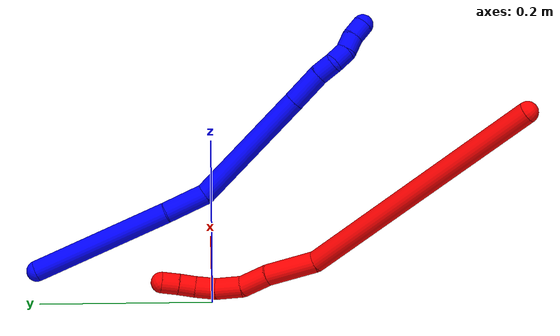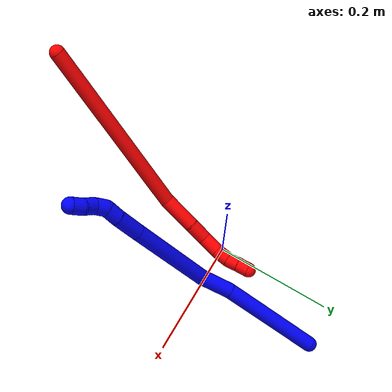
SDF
<sdf version="1.7">
 <world name="default">
  <plugin name="TubeGeneratorPlugin" filename="libtube_generator_plugin.so"/>
  <model name="photoneo_s_sensor">
   <static>1</static>
   <pose>0 0 2 1.57079 1.57079 3.14159</pose>
   <link name="link">
    <inertial><mass>0.1</mass></inertial>
    <sensor name="sensor" type="depth">
     <update_rate>30</update_rate>
     <camera>
      <horizontal_fov>1.22</horizontal_fov>
      <image><width>1920</width><height>1200</height><format>B8G8R8</format></image>
      <clip><near>0.1</near><far>4</far></clip>
      <depth_camera><output>points</output></depth_camera>
     </camera>
     <plugin name="camera_plugin" filename="libgazebo_ros_depth_camera.so">
      <baseline>0.2</baseline>
      <alwaysOn>1</alwaysOn>
      <updateRate>0.0</updateRate>
      <cameraName>camera_ir</cameraName>
      <imageTopicName>/camera/color/image_raw</imageTopicName>
      <cameraInfoTopicName>/camera/color/camera_info</cameraInfoTopicName>
      <depthImageTopicName>/camera/depth/image_raw</depthImageTopicName>
      <depthImageCameraInfoTopicName>/camera/depth/camera_info</depthImageCameraInfoTopicName>
      <pointCloudTopicName>/camera/depth/points</pointCloudTopicName>
      <frameName>fr_optical</frameName>
      <pointCloudCutoff>0.1</pointCloudCutoff>
      <pointCloudCutoffMax>2.0</pointCloudCutoffMax>
      <distortionK1>0</distortionK1>
      <distortionK2>0</distortionK2>
      <distortionK3>0</distortionK3>
      <distortionT1>0</distortionT1>
      <distortionT2>0</distortionT2>
      <CxPrime>0</CxPrime>
      <Cx>0</Cx>
      <Cy>0</Cy>
      <focalLength>0</focalLength>
      <hackBaseline>0</hackBaseline>
     </plugin>
    </sensor>
   </link>
  </model>
  <gravity>0 0 -9.8</gravity>
  <magnetic_field>6e-06 2.3e-05 -4.2e-05</magnetic_field>
  <atmosphere type="adiabatic"/>
  <physics name="default_physics" default="0" type="ode">
   <max_step_size>0.003</max_step_size>
   <real_time_factor>1</real_time_factor>
   <real_time_update_rate>1000</real_time_update_rate>
   <max_contacts>10000</max_contacts>
   <ode>
    <solver>
     <type>quick</type>
     <iters>100</iters>
     <sor>1.3</sor>
     <use_dynamic_moi_rescaling>0</use_dynamic_moi_rescaling>
    </solver>
    <constraints>
     <contact_max_correcting_vel>0</contact_max_correcting_vel>
     <contact_surface_layer>0.001</contact_surface_layer>
     <cfm>0</cfm>
     <erp>0.2</erp>
    </constraints>
   </ode>
  </physics>
  <scene><ambient>0.4 0.4 0.4 1</ambient><background>0.7 0.7 0.7 1</background><shadows>0</shadows></scene>
  <audio><device>default</device></audio>
  <spherical_coordinates>
   <surface_model>EARTH_WGS84</surface_model>
   <latitude_deg>0</latitude_deg>
   <longitude_deg>0</longitude_deg>
   <elevation>0</elevation>
   <heading_deg>0</heading_deg>
  </spherical_coordinates>
  <model name="bin">
   <static>1</static>
   <link name="bottom">
    <collision name="collision-bottom">
     <pose>0 0 -0.01 0 -0 0</pose>
     <geometry><box><size>0.8 0.6 0.02</size></box></geometry>
     <surface>
      <friction><ode><mu>100</mu><mu2>100</mu2></ode></friction>
      <contact><collide_bitmask>65535</collide_bitmask></contact>
     </surface>
    </collision>
   </link>
   <link name="west_wall">
    <collision name="collision-west_wall">
     <pose>-0.41 0 0.1 0 -0 0</pose>
     <geometry><box><size>0.02 0.6 0.2</size></box></geometry>
     <surface>
      <friction><ode><mu>100</mu><mu2>100</mu2></ode></friction>
      <contact><collide_bitmask>65535</collide_bitmask></contact>
     </surface>
    </collision>
   </link>
   <link name="east_wall">
    <collision name="collision-east_wall">
     <pose>0.41 0 0.1 0 -0 0</pose>
     <geometry><box><size>0.02 0.6 0.2</size></box></geometry>
     <surface>
      <friction><ode><mu>100</mu><mu2>100</mu2></ode></friction>
      <contact><collide_bitmask>65535</collide_bitmask></contact>
     </surface>
    </collision>
   </link>
   <link name="south_wall">
    <collision name="collision-south_wall">
     <pose>0 -0.31 0.1 0 -0 0</pose>
     <geometry><box><size>0.8 0.02 0.2</size></box></geometry>
     <surface>
      <friction><ode><mu>100</mu><mu2>100</mu2></ode></friction>
      <contact><collide_bitmask>65535</collide_bitmask></contact>
     </surface>
    </collision>
   </link>
   <link name="north_wall">
    <collision name="collision-north_wall">
     <pose>0 0.31 0.1 0 -0 0</pose>
     <geometry><box><size>0.8 0.02 0.2</size></box></geometry>
     <surface>
      <friction><ode><mu>100</mu><mu2>100</mu2></ode></friction>
      <contact><collide_bitmask>65535</collide_bitmask></contact>
     </surface>
    </collision>
   </link>
  </model>
  <model name="1">
   <static>0</static>
   <link name="1">
    <collision name="collision-cylinder-e_1_1_4">
     <pose>-0.001756 -0.057447 -0.062688 2.3998 -0.020645 -0.053077</pose>
     <geometry><cylinder><radius>0.0125</radius><length>0.170094</length></cylinder></geometry>
     <surface>
      <friction><ode><mu>1.16</mu><mu2>1.16</mu2><slip1>0</slip1><slip2>0</slip2></ode></friction>
      <contact><ode><kp>1e+06</kp><kd>1</kd><max_vel>0</max_vel><min_depth>0.001</min_depth></ode></contact>
     </surface>
    </collision>
    <visual name="visual-cylinder-e_1_1_4">
     <pose>-0.001756 -0.057447 -0.062688 2.3998 -0.020645 -0.053077</pose>
     <geometry><cylinder><radius>0.0125</radius><length>0.170094</length></cylinder></geometry>
     <material><ambient>0 0 1 1</ambient></material>
    </visual>
    <collision name="collision-cylinder-e_2_4_5">
     <pose>-0.001137 -0.130721 -0.145364 2.47184 0.092876 0.265519</pose>
     <geometry><cylinder><radius>0.0125</radius><length>0.051212</length></cylinder></geometry>
     <surface>
      <friction><ode><mu>1.16</mu><mu2>1.16</mu2><slip1>0</slip1><slip2>0</slip2></ode></friction>
      <contact><ode><kp>1e+06</kp><kd>1</kd><max_vel>0</max_vel><min_depth>0.001</min_depth></ode></contact>
     </surface>
    </collision>
    <visual name="visual-cylinder-e_2_4_5">
     <pose>-0.001137 -0.130721 -0.145364 2.47184 0.092876 0.265519</pose>
     <geometry><cylinder><radius>0.0125</radius><length>0.051212</length></cylinder></geometry>
     <material><ambient>0 0 1 1</ambient></material>
    </visual>
    <collision name="collision-cylinder-e_3_5_6">
     <pose>0.01456 -0.212911 -0.201379 2.06815 0.174623 0.292145</pose>
     <geometry><cylinder><radius>0.0125</radius><length>0.153356</length></cylinder></geometry>
     <surface>
      <friction><ode><mu>1.16</mu><mu2>1.16</mu2><slip1>0</slip1><slip2>0</slip2></ode></friction>
      <contact><ode><kp>1e+06</kp><kd>1</kd><max_vel>0</max_vel><min_depth>0.001</min_depth></ode></contact>
     </surface>
    </collision>
    <visual name="visual-cylinder-e_3_5_6">
     <pose>0.01456 -0.212911 -0.201379 2.06815 0.174623 0.292145</pose>
     <geometry><cylinder><radius>0.0125</radius><length>0.153356</length></cylinder></geometry>
     <material><ambient>0 0 1 1</ambient></material>
    </visual>
    <collision name="collision-cylinder-e_4_6_7">
     <pose>0.031543 -0.29795 -0.24714 2.05131 0.17215 0.282675</pose>
     <geometry><cylinder><radius>0.0125</radius><length>0.042752</length></cylinder></geometry>
     <surface>
      <friction><ode><mu>1.16</mu><mu2>1.16</mu2><slip1>0</slip1><slip2>0</slip2></ode></friction>
      <contact><ode><kp>1e+06</kp><kd>1</kd><max_vel>0</max_vel><min_depth>0.001</min_depth></ode></contact>
     </surface>
    </collision>
    <visual name="visual-cylinder-e_4_6_7">
     <pose>0.031543 -0.29795 -0.24714 2.05131 0.17215 0.282675</pose>
     <geometry><cylinder><radius>0.0125</radius><length>0.042752</length></cylinder></geometry>
     <material><ambient>0 0 1 1</ambient></material>
    </visual>
    <collision name="collision-cylinder-e_5_7_8">
     <pose>0.035611 -0.326107 -0.262836 2.13206 0.036207 0.065516</pose>
     <geometry><cylinder><radius>0.0125</radius><length>0.022415</length></cylinder></geometry>
     <surface>
      <friction><ode><mu>1.16</mu><mu2>1.16</mu2><slip1>0</slip1><slip2>0</slip2></ode></friction>
      <contact><ode><kp>1e+06</kp><kd>1</kd><max_vel>0</max_vel><min_depth>0.001</min_depth></ode></contact>
     </surface>
    </collision>
    <visual name="visual-cylinder-e_5_7_8">
     <pose>0.035611 -0.326107 -0.262836 2.13206 0.036207 0.065516</pose>
     <geometry><cylinder><radius>0.0125</radius><length>0.022415</length></cylinder></geometry>
     <material><ambient>0 0 1 1</ambient></material>
    </visual>
    <collision name="collision-cylinder-e_6_8_9">
     <pose>0.040294 -0.34182 -0.275359 2.3819 0.441597 1.02436</pose>
     <geometry><cylinder><radius>0.0125</radius><length>0.020019</length></cylinder></geometry>
     <surface>
      <friction><ode><mu>1.16</mu><mu2>1.16</mu2><slip1>0</slip1><slip2>0</slip2></ode></friction>
      <contact><ode><kp>1e+06</kp><kd>1</kd><max_vel>0</max_vel><min_depth>0.001</min_depth></ode></contact>
     </surface>
    </collision>
    <visual name="visual-cylinder-e_6_8_9">
     <pose>0.040294 -0.34182 -0.275359 2.3819 0.441597 1.02436</pose>
     <geometry><cylinder><radius>0.0125</radius><length>0.020019</length></cylinder></geometry>
     <material><ambient>0 0 1 1</ambient></material>
    </visual>
    <collision name="collision-cylinder-e_7_9_10">
     <pose>0.051517 -0.354293 -0.28571 2.11658 0.760397 1.23518</pose>
     <geometry><cylinder><radius>0.0125</radius><length>0.020151</length></cylinder></geometry>
     <surface>
      <friction><ode><mu>1.16</mu><mu2>1.16</mu2><slip1>0</slip1><slip2>0</slip2></ode></friction>
      <contact><ode><kp>1e+06</kp><kd>1</kd><max_vel>0</max_vel><min_depth>0.001</min_depth></ode></contact>
     </surface>
    </collision>
    <visual name="visual-cylinder-e_7_9_10">
     <pose>0.051517 -0.354293 -0.28571 2.11658 0.760397 1.23518</pose>
     <geometry><cylinder><radius>0.0125</radius><length>0.020151</length></cylinder></geometry>
     <material><ambient>0 0 1 1</ambient></material>
    </visual>
    <collision name="collision-cylinder-e_8_10_2">
     <pose>0.06378 -0.366823 -0.295169 2.30437 0.560771 1.1489</pose>
     <geometry><cylinder><radius>0.0125</radius><length>0.020002</length></cylinder></geometry>
     <surface>
      <friction><ode><mu>1.16</mu><mu2>1.16</mu2><slip1>0</slip1><slip2>0</slip2></ode></friction>
      <contact><ode><kp>1e+06</kp><kd>1</kd><max_vel>0</max_vel><min_depth>0.001</min_depth></ode></contact>
     </surface>
    </collision>
    <visual name="visual-cylinder-e_8_10_2">
     <pose>0.06378 -0.366823 -0.295169 2.30437 0.560771 1.1489</pose>
     <geometry><cylinder><radius>0.0125</radius><length>0.020002</length></cylinder></geometry>
     <material><ambient>0 0 1 1</ambient></material>
    </visual>
    <collision name="collision-sphere-2">
     <pose>0.069098 -0.373114 -0.30084 0 -0 0</pose>
     <geometry><sphere><radius>0.0125</radius></sphere></geometry>
     <surface>
      <friction><ode><mu>1.16</mu><mu2>1.16</mu2><slip1>0</slip1><slip2>0</slip2></ode></friction>
      <contact><ode><kp>1e+06</kp><kd>1</kd><max_vel>0</max_vel><min_depth>0.001</min_depth></ode></contact>
     </surface>
    </collision>
    <visual name="visual-sphere-2">
     <pose>0.069098 -0.373114 -0.30084 0 -0 0</pose>
     <geometry><sphere><radius>0.0125</radius></sphere></geometry>
     <material><ambient>0 0 1 1</ambient></material>
    </visual>
    <collision name="collision-sphere-10">
     <pose>0.058461 -0.360532 -0.289499 0 -0 0</pose>
     <geometry><sphere><radius>0.0125</radius></sphere></geometry>
     <surface>
      <friction><ode><mu>1.16</mu><mu2>1.16</mu2><slip1>0</slip1><slip2>0</slip2></ode></friction>
      <contact><ode><kp>1e+06</kp><kd>1</kd><max_vel>0</max_vel><min_depth>0.001</min_depth></ode></contact>
     </surface>
    </collision>
    <visual name="visual-sphere-10">
     <pose>0.058461 -0.360532 -0.289499 0 -0 0</pose>
     <geometry><sphere><radius>0.0125</radius></sphere></geometry>
     <material><ambient>0 0 1 1</ambient></material>
    </visual>
    <collision name="collision-sphere-9">
     <pose>0.044572 -0.348053 -0.28192 0 -0 0</pose>
     <geometry><sphere><radius>0.0125</radius></sphere></geometry>
     <surface>
      <friction><ode><mu>1.16</mu><mu2>1.16</mu2><slip1>0</slip1><slip2>0</slip2></ode></friction>
      <contact><ode><kp>1e+06</kp><kd>1</kd><max_vel>0</max_vel><min_depth>0.001</min_depth></ode></contact>
     </surface>
    </collision>
    <visual name="visual-sphere-9">
     <pose>0.044572 -0.348053 -0.28192 0 -0 0</pose>
     <geometry><sphere><radius>0.0125</radius></sphere></geometry>
     <material><ambient>0 0 1 1</ambient></material>
    </visual>
    <collision name="collision-sphere-4">
     <pose>-0.003511 -0.114893 -0.125376 0 -0 0</pose>
     <geometry><sphere><radius>0.0125</radius></sphere></geometry>
     <surface>
      <friction><ode><mu>1.16</mu><mu2>1.16</mu2><slip1>0</slip1><slip2>0</slip2></ode></friction>
      <contact><ode><kp>1e+06</kp><kd>1</kd><max_vel>0</max_vel><min_depth>0.001</min_depth></ode></contact>
     </surface>
    </collision>
    <visual name="visual-sphere-4">
     <pose>-0.003511 -0.114893 -0.125376 0 -0 0</pose>
     <geometry><sphere><radius>0.0125</radius></sphere></geometry>
     <material><ambient>0 0 1 1</ambient></material>
    </visual>
    <collision name="collision-sphere-1">
     <geometry><sphere><radius>0.0125</radius></sphere></geometry>
     <surface>
      <friction><ode><mu>1.16</mu><mu2>1.16</mu2><slip1>0</slip1><slip2>0</slip2></ode></friction>
      <contact><ode><kp>1e+06</kp><kd>1</kd><max_vel>0</max_vel><min_depth>0.001</min_depth></ode></contact>
     </surface>
    </collision>
    <visual name="visual-sphere-1">
     <geometry><sphere><radius>0.0125</radius></sphere></geometry>
     <material><ambient>0 0 1 1</ambient></material>
    </visual>
    <collision name="collision-sphere-8">
     <pose>0.036016 -0.335588 -0.268798 0 -0 0</pose>
     <geometry><sphere><radius>0.0125</radius></sphere></geometry>
     <surface>
      <friction><ode><mu>1.16</mu><mu2>1.16</mu2><slip1>0</slip1><slip2>0</slip2></ode></friction>
      <contact><ode><kp>1e+06</kp><kd>1</kd><max_vel>0</max_vel><min_depth>0.001</min_depth></ode></contact>
     </surface>
    </collision>
    <visual name="visual-sphere-8">
     <pose>0.036016 -0.335588 -0.268798 0 -0 0</pose>
     <geometry><sphere><radius>0.0125</radius></sphere></geometry>
     <material><ambient>0 0 1 1</ambient></material>
    </visual>
    <collision name="collision-sphere-5">
     <pose>0.001238 -0.146548 -0.165352 0 -0 0</pose>
     <geometry><sphere><radius>0.0125</radius></sphere></geometry>
     <surface>
      <friction><ode><mu>1.16</mu><mu2>1.16</mu2><slip1>0</slip1><slip2>0</slip2></ode></friction>
      <contact><ode><kp>1e+06</kp><kd>1</kd><max_vel>0</max_vel><min_depth>0.001</min_depth></ode></contact>
     </surface>
    </collision>
    <visual name="visual-sphere-5">
     <pose>0.001238 -0.146548 -0.165352 0 -0 0</pose>
     <geometry><sphere><radius>0.0125</radius></sphere></geometry>
     <material><ambient>0 0 1 1</ambient></material>
    </visual>
    <collision name="collision-sphere-6">
     <pose>0.027882 -0.279275 -0.237406 0 -0 0</pose>
     <geometry><sphere><radius>0.0125</radius></sphere></geometry>
     <surface>
      <friction><ode><mu>1.16</mu><mu2>1.16</mu2><slip1>0</slip1><slip2>0</slip2></ode></friction>
      <contact><ode><kp>1e+06</kp><kd>1</kd><max_vel>0</max_vel><min_depth>0.001</min_depth></ode></contact>
     </surface>
    </collision>
    <visual name="visual-sphere-6">
     <pose>0.027882 -0.279275 -0.237406 0 -0 0</pose>
     <geometry><sphere><radius>0.0125</radius></sphere></geometry>
     <material><ambient>0 0 1 1</ambient></material>
    </visual>
    <collision name="collision-sphere-7">
     <pose>0.035205 -0.316625 -0.256875 0 -0 0</pose>
     <geometry><sphere><radius>0.0125</radius></sphere></geometry>
     <surface>
      <friction><ode><mu>1.16</mu><mu2>1.16</mu2><slip1>0</slip1><slip2>0</slip2></ode></friction>
      <contact><ode><kp>1e+06</kp><kd>1</kd><max_vel>0</max_vel><min_depth>0.001</min_depth></ode></contact>
     </surface>
    </collision>
    <visual name="visual-sphere-7">
     <pose>0.035205 -0.316625 -0.256875 0 -0 0</pose>
     <geometry><sphere><radius>0.0125</radius></sphere></geometry>
     <material><ambient>0 0 1 1</ambient></material>
    </visual>
    <inertial>
     <pose>0.014286 -0.180968 -0.165241 0 -0 0</pose>
     <mass>0.5</mass>
     <inertia>
      <ixx>0.000808</ixx>
      <ixy>0</ixy>
      <ixz>0</ixz>
      <iyy>-0.000402</iyy>
      <iyz>0</iyz>
      <izz>0.000493</izz>
     </inertia>
    </inertial>
   </link>
   <pose>0.070962 0.207522 0.011495 -1.29406 -0.324949 0.205204</pose>
  </model>
  <model name="2">
   <static>0</static>
   <link name="2">
    <collision name="collision-cylinder-e_1_1_4">
     <pose>0.007851 -0.014261 -0.15404 3.04928 0.050704 1.00411</pose>
     <geometry><cylinder><radius>0.0125</radius><length>0.309796</length></cylinder></geometry>
     <surface>
      <friction><ode><mu>1.16</mu><mu2>1.16</mu2><slip1>0</slip1><slip2>0</slip2></ode></friction>
      <contact><ode><kp>1e+06</kp><kd>1</kd><max_vel>0</max_vel><min_depth>0.001</min_depth></ode></contact>
     </surface>
    </collision>
    <visual name="visual-cylinder-e_1_1_4">
     <pose>0.007851 -0.014261 -0.15404 3.04928 0.050704 1.00411</pose>
     <geometry><cylinder><radius>0.0125</radius><length>0.309796</length></cylinder></geometry>
     <material><ambient>1 0 0 1</ambient></material>
    </visual>
    <collision name="collision-cylinder-e_2_4_5">
     <pose>0.017766 -0.020699 -0.336833 -2.87594 0.069199 -0.50697</pose>
     <geometry><cylinder><radius>0.0125</radius><length>0.059739</length></cylinder></geometry>
     <surface>
      <friction><ode><mu>1.16</mu><mu2>1.16</mu2><slip1>0</slip1><slip2>0</slip2></ode></friction>
      <contact><ode><kp>1e+06</kp><kd>1</kd><max_vel>0</max_vel><min_depth>0.001</min_depth></ode></contact>
     </surface>
    </collision>
    <visual name="visual-cylinder-e_2_4_5">
     <pose>0.017766 -0.020699 -0.336833 -2.87594 0.069199 -0.50697</pose>
     <geometry><cylinder><radius>0.0125</radius><length>0.059739</length></cylinder></geometry>
     <material><ambient>1 0 0 1</ambient></material>
    </visual>
    <collision name="collision-cylinder-e_3_5_6">
     <pose>0.020108 -0.010878 -0.382284 -3.02254 0.016414 -0.273701</pose>
     <geometry><cylinder><radius>0.0125</radius><length>0.033639</length></cylinder></geometry>
     <surface>
      <friction><ode><mu>1.16</mu><mu2>1.16</mu2><slip1>0</slip1><slip2>0</slip2></ode></friction>
      <contact><ode><kp>1e+06</kp><kd>1</kd><max_vel>0</max_vel><min_depth>0.001</min_depth></ode></contact>
     </surface>
    </collision>
    <visual name="visual-cylinder-e_3_5_6">
     <pose>0.020108 -0.010878 -0.382284 -3.02254 0.016414 -0.273701</pose>
     <geometry><cylinder><radius>0.0125</radius><length>0.033639</length></cylinder></geometry>
     <material><ambient>1 0 0 1</ambient></material>
    </visual>
    <collision name="collision-cylinder-e_4_6_7">
     <pose>0.022586 -0.002346 -0.413239 -2.7118 0.139516 -0.619622</pose>
     <geometry><cylinder><radius>0.0125</radius><length>0.031675</length></cylinder></geometry>
     <surface>
      <friction><ode><mu>1.16</mu><mu2>1.16</mu2><slip1>0</slip1><slip2>0</slip2></ode></friction>
      <contact><ode><kp>1e+06</kp><kd>1</kd><max_vel>0</max_vel><min_depth>0.001</min_depth></ode></contact>
     </surface>
    </collision>
    <visual name="visual-cylinder-e_4_6_7">
     <pose>0.022586 -0.002346 -0.413239 -2.7118 0.139516 -0.619622</pose>
     <geometry><cylinder><radius>0.0125</radius><length>0.031675</length></cylinder></geometry>
     <material><ambient>1 0 0 1</ambient></material>
    </visual>
    <collision name="collision-cylinder-e_5_7_8">
     <pose>0.02619 0.011832 -0.437258 -2.47737 0.112561 -0.323856</pose>
     <geometry><cylinder><radius>0.0125</radius><length>0.024952</length></cylinder></geometry>
     <surface>
      <friction><ode><mu>1.16</mu><mu2>1.16</mu2><slip1>0</slip1><slip2>0</slip2></ode></friction>
      <contact><ode><kp>1e+06</kp><kd>1</kd><max_vel>0</max_vel><min_depth>0.001</min_depth></ode></contact>
     </surface>
    </collision>
    <visual name="visual-cylinder-e_5_7_8">
     <pose>0.02619 0.011832 -0.437258 -2.47737 0.112561 -0.323856</pose>
     <geometry><cylinder><radius>0.0125</radius><length>0.024952</length></cylinder></geometry>
     <material><ambient>1 0 0 1</ambient></material>
    </visual>
    <collision name="collision-cylinder-e_6_8_9">
     <pose>0.027115 0.026902 -0.453726 -2.3052 -0.047594 0.107012</pose>
     <geometry><cylinder><radius>0.0125</radius><length>0.020039</length></cylinder></geometry>
     <surface>
      <friction><ode><mu>1.16</mu><mu2>1.16</mu2><slip1>0</slip1><slip2>0</slip2></ode></friction>
      <contact><ode><kp>1e+06</kp><kd>1</kd><max_vel>0</max_vel><min_depth>0.001</min_depth></ode></contact>
     </surface>
    </collision>
    <visual name="visual-cylinder-e_6_8_9">
     <pose>0.027115 0.026902 -0.453726 -2.3052 -0.047594 0.107012</pose>
     <geometry><cylinder><radius>0.0125</radius><length>0.020039</length></cylinder></geometry>
     <material><ambient>1 0 0 1</ambient></material>
    </visual>
    <collision name="collision-cylinder-e_7_9_2">
     <pose>0.026241 0.041424 -0.467584 -2.36021 -0.039427 0.095668</pose>
     <geometry><cylinder><radius>0.0125</radius><length>0.02016</length></cylinder></geometry>
     <surface>
      <friction><ode><mu>1.16</mu><mu2>1.16</mu2><slip1>0</slip1><slip2>0</slip2></ode></friction>
      <contact><ode><kp>1e+06</kp><kd>1</kd><max_vel>0</max_vel><min_depth>0.001</min_depth></ode></contact>
     </surface>
    </collision>
    <visual name="visual-cylinder-e_7_9_2">
     <pose>0.026241 0.041424 -0.467584 -2.36021 -0.039427 0.095668</pose>
     <geometry><cylinder><radius>0.0125</radius><length>0.02016</length></cylinder></geometry>
     <material><ambient>1 0 0 1</ambient></material>
    </visual>
    <collision name="collision-sphere-2">
     <pose>0.025843 0.048518 -0.474735 0 -0 0</pose>
     <geometry><sphere><radius>0.0125</radius></sphere></geometry>
     <surface>
      <friction><ode><mu>1.16</mu><mu2>1.16</mu2><slip1>0</slip1><slip2>0</slip2></ode></friction>
      <contact><ode><kp>1e+06</kp><kd>1</kd><max_vel>0</max_vel><min_depth>0.001</min_depth></ode></contact>
     </surface>
    </collision>
    <visual name="visual-sphere-2">
     <pose>0.025843 0.048518 -0.474735 0 -0 0</pose>
     <geometry><sphere><radius>0.0125</radius></sphere></geometry>
     <material><ambient>1 0 0 1</ambient></material>
    </visual>
    <collision name="collision-sphere-9">
     <pose>0.026638 0.034331 -0.460433 0 -0 0</pose>
     <geometry><sphere><radius>0.0125</radius></sphere></geometry>
     <surface>
      <friction><ode><mu>1.16</mu><mu2>1.16</mu2><slip1>0</slip1><slip2>0</slip2></ode></friction>
      <contact><ode><kp>1e+06</kp><kd>1</kd><max_vel>0</max_vel><min_depth>0.001</min_depth></ode></contact>
     </surface>
    </collision>
    <visual name="visual-sphere-9">
     <pose>0.026638 0.034331 -0.460433 0 -0 0</pose>
     <geometry><sphere><radius>0.0125</radius></sphere></geometry>
     <material><ambient>1 0 0 1</ambient></material>
    </visual>
    <collision name="collision-sphere-4">
     <pose>0.015701 -0.028522 -0.30808 0 -0 0</pose>
     <geometry><sphere><radius>0.0125</radius></sphere></geometry>
     <surface>
      <friction><ode><mu>1.16</mu><mu2>1.16</mu2><slip1>0</slip1><slip2>0</slip2></ode></friction>
      <contact><ode><kp>1e+06</kp><kd>1</kd><max_vel>0</max_vel><min_depth>0.001</min_depth></ode></contact>
     </surface>
    </collision>
    <visual name="visual-sphere-4">
     <pose>0.015701 -0.028522 -0.30808 0 -0 0</pose>
     <geometry><sphere><radius>0.0125</radius></sphere></geometry>
     <material><ambient>1 0 0 1</ambient></material>
    </visual>
    <collision name="collision-sphere-1">
     <geometry><sphere><radius>0.0125</radius></sphere></geometry>
     <surface>
      <friction><ode><mu>1.16</mu><mu2>1.16</mu2><slip1>0</slip1><slip2>0</slip2></ode></friction>
      <contact><ode><kp>1e+06</kp><kd>1</kd><max_vel>0</max_vel><min_depth>0.001</min_depth></ode></contact>
     </surface>
    </collision>
    <visual name="visual-sphere-1">
     <geometry><sphere><radius>0.0125</radius></sphere></geometry>
     <material><ambient>1 0 0 1</ambient></material>
    </visual>
    <collision name="collision-sphere-8">
     <pose>0.027591 0.019474 -0.447019 0 -0 0</pose>
     <geometry><sphere><radius>0.0125</radius></sphere></geometry>
     <surface>
      <friction><ode><mu>1.16</mu><mu2>1.16</mu2><slip1>0</slip1><slip2>0</slip2></ode></friction>
      <contact><ode><kp>1e+06</kp><kd>1</kd><max_vel>0</max_vel><min_depth>0.001</min_depth></ode></contact>
     </surface>
    </collision>
    <visual name="visual-sphere-8">
     <pose>0.027591 0.019474 -0.447019 0 -0 0</pose>
     <geometry><sphere><radius>0.0125</radius></sphere></geometry>
     <material><ambient>1 0 0 1</ambient></material>
    </visual>
    <collision name="collision-sphere-5">
     <pose>0.019832 -0.012875 -0.365585 0 -0 0</pose>
     <geometry><sphere><radius>0.0125</radius></sphere></geometry>
     <surface>
      <friction><ode><mu>1.16</mu><mu2>1.16</mu2><slip1>0</slip1><slip2>0</slip2></ode></friction>
      <contact><ode><kp>1e+06</kp><kd>1</kd><max_vel>0</max_vel><min_depth>0.001</min_depth></ode></contact>
     </surface>
    </collision>
    <visual name="visual-sphere-5">
     <pose>0.019832 -0.012875 -0.365585 0 -0 0</pose>
     <geometry><sphere><radius>0.0125</radius></sphere></geometry>
     <material><ambient>1 0 0 1</ambient></material>
    </visual>
    <collision name="collision-sphere-6">
     <pose>0.020384 -0.008881 -0.398982 0 -0 0</pose>
     <geometry><sphere><radius>0.0125</radius></sphere></geometry>
     <surface>
      <friction><ode><mu>1.16</mu><mu2>1.16</mu2><slip1>0</slip1><slip2>0</slip2></ode></friction>
      <contact><ode><kp>1e+06</kp><kd>1</kd><max_vel>0</max_vel><min_depth>0.001</min_depth></ode></contact>
     </surface>
    </collision>
    <visual name="visual-sphere-6">
     <pose>0.020384 -0.008881 -0.398982 0 -0 0</pose>
     <geometry><sphere><radius>0.0125</radius></sphere></geometry>
     <material><ambient>1 0 0 1</ambient></material>
    </visual>
    <collision name="collision-sphere-7">
     <pose>0.024789 0.00419 -0.427497 0 -0 0</pose>
     <geometry><sphere><radius>0.0125</radius></sphere></geometry>
     <surface>
      <friction><ode><mu>1.16</mu><mu2>1.16</mu2><slip1>0</slip1><slip2>0</slip2></ode></friction>
      <contact><ode><kp>1e+06</kp><kd>1</kd><max_vel>0</max_vel><min_depth>0.001</min_depth></ode></contact>
     </surface>
    </collision>
    <visual name="visual-sphere-7">
     <pose>0.024789 0.00419 -0.427497 0 -0 0</pose>
     <geometry><sphere><radius>0.0125</radius></sphere></geometry>
     <material><ambient>1 0 0 1</ambient></material>
    </visual>
    <inertial>
     <pose>0.013222 -0.00885 -0.246443 0 -0 0</pose>
     <mass>0.5</mass>
     <inertia><ixx>0.003451</ixx><ixy>0</ixy><ixz>0</ixz><iyy>0.00074</iyy><iyz>0</iyz><izz>5.3e-05</izz></inertia>
    </inertial>
   </link>
   <pose>-0.07534 -0.346476 0.25664 0.931737 -0.161271 -0.060694</pose>
  </model>
 </world>
</sdf>
